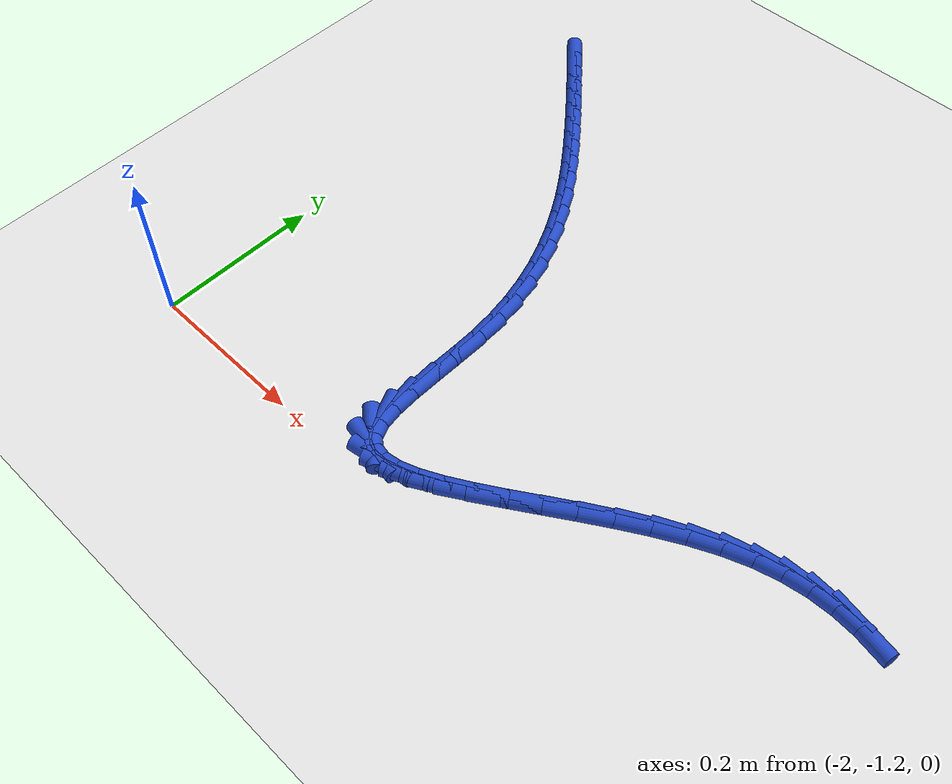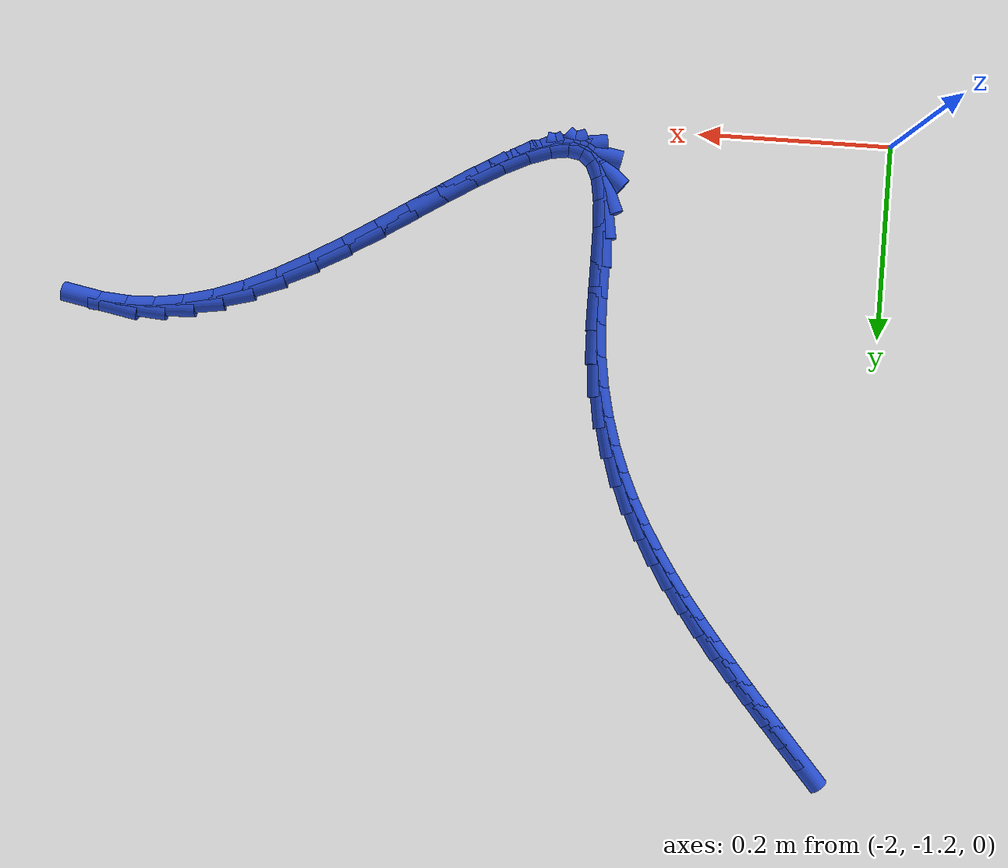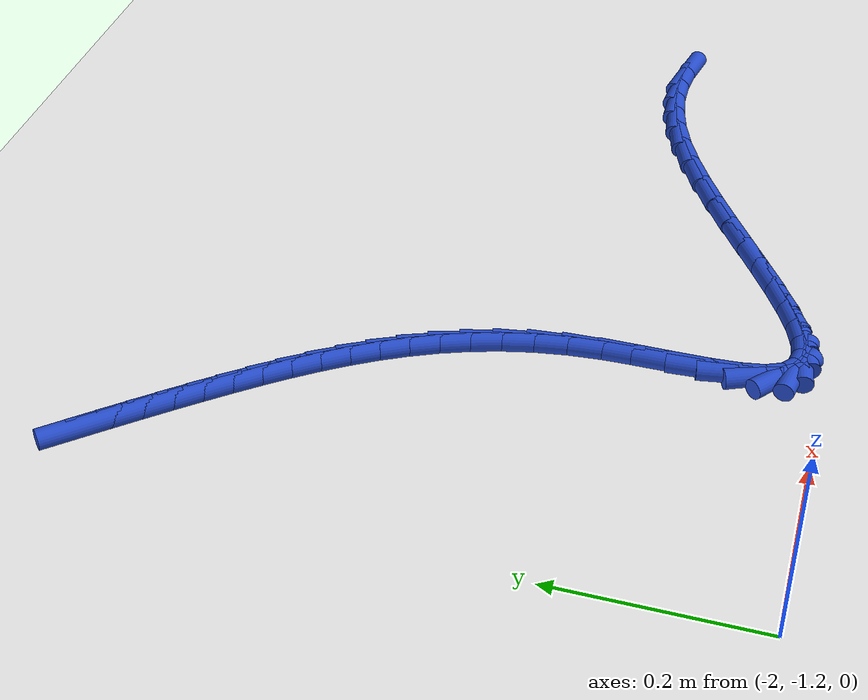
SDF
<sdf version="1.6">
 <world name="default">
  <model name="ground_plane">
   <static>1</static>
   <link name="link">
    <collision name="collision">
     <geometry><plane><normal>0 0 1</normal><size>100 100</size></plane></geometry>
     <surface><friction><ode><mu>100</mu><mu2>50</mu2></ode></friction></surface>
    </collision>
    <visual name="visual">
     <cast_shadows>0</cast_shadows>
     <geometry><plane><normal>0 0 1</normal><size>100 100</size></plane></geometry>
     <material>
      <script><uri>file://media/materials/scripts/gazebo.material</uri><name>Gazebo/WhiteGlow</name></script>
     </material>
    </visual>
   </link>
  </model>
  <model name="line">
   <link name="link_146">
    <pose>-1.9414628512714653 -0.5647062312395553 0.01 0 1.57 -0.8475536623716425</pose>
    <collision name="collision">
     <geometry><cylinder><radius>0.01</radius><length>0.08</length></cylinder></geometry>
    </collision>
    <visual name="visual">
     <material>
      <script><name>Gazebo/Blue</name><uri>file://media/materials/scripts/gazebo.material</uri></script>
     </material>
     <geometry><cylinder><radius>0.01</radius><length>0.08</length></cylinder></geometry>
    </visual>
   </link>
   <link name="link_147">
    <pose>-1.922609533267348 -0.5860619877239971 0.01 0 1.57 -0.853258498828122</pose>
    <collision name="collision">
     <geometry><cylinder><radius>0.01</radius><length>0.08</length></cylinder></geometry>
    </collision>
    <visual name="visual">
     <material>
      <script><name>Gazebo/Blue</name><uri>file://media/materials/scripts/gazebo.material</uri></script>
     </material>
     <geometry><cylinder><radius>0.01</radius><length>0.08</length></cylinder></geometry>
    </visual>
   </link>
   <link name="link_148">
    <pose>-1.9039316479799 -0.6074638830288714 0.01 0 1.57 -0.8606348979315335</pose>
    <collision name="collision">
     <geometry><cylinder><radius>0.01</radius><length>0.08</length></cylinder></geometry>
    </collision>
    <visual name="visual">
     <material>
      <script><name>Gazebo/Blue</name><uri>file://media/materials/scripts/gazebo.material</uri></script>
     </material>
     <geometry><cylinder><radius>0.01</radius><length>0.08</length></cylinder></geometry>
    </visual>
   </link>
   <link name="link_149">
    <pose>-1.885436559193729 -0.6289745677154739 0.01 0 1.57 -0.8696554462600776</pose>
    <collision name="collision">
     <geometry><cylinder><radius>0.01</radius><length>0.08</length></cylinder></geometry>
    </collision>
    <visual name="visual">
     <material>
      <script><name>Gazebo/Blue</name><uri>file://media/materials/scripts/gazebo.material</uri></script>
     </material>
     <geometry><cylinder><radius>0.01</radius><length>0.08</length></cylinder></geometry>
    </visual>
   </link>
   <link name="link_150">
    <pose>-1.8671316306934422 -0.650656692345099 0.01 0 1.57 -0.8804601049627584</pose>
    <collision name="collision">
     <geometry><cylinder><radius>0.01</radius><length>0.08</length></cylinder></geometry>
    </collision>
    <visual name="visual">
     <material>
      <script><name>Gazebo/Blue</name><uri>file://media/materials/scripts/gazebo.material</uri></script>
     </material>
     <geometry><cylinder><radius>0.01</radius><length>0.08</length></cylinder></geometry>
    </visual>
   </link>
   <link name="link_151">
    <pose>-1.8490296761561595 -0.6725745049234373 0.01 0 1.57 -0.8960218227219034</pose>
    <collision name="collision">
     <geometry><cylinder><radius>0.01</radius><length>0.08</length></cylinder></geometry>
    </collision>
    <visual name="visual">
     <material>
      <script><name>Gazebo/Blue</name><uri>file://media/materials/scripts/gazebo.material</uri></script>
     </material>
     <geometry><cylinder><radius>0.01</radius><length>0.08</length></cylinder></geometry>
    </visual>
   </link>
   <link name="link_152">
    <pose>-1.8312332171754893 -0.6948185481781594 0.01 0 1.57 -0.9187952316832634</pose>
    <collision name="collision">
     <geometry><cylinder><radius>0.01</radius><length>0.08</length></cylinder></geometry>
    </collision>
    <visual name="visual">
     <material>
      <script><name>Gazebo/Blue</name><uri>file://media/materials/scripts/gazebo.material</uri></script>
     </material>
     <geometry><cylinder><radius>0.01</radius><length>0.08</length></cylinder></geometry>
    </visual>
   </link>
   <link name="link_153">
    <pose>-1.813918260334158 -0.7175009043780839 0.01 0 1.57 -0.9488386832043584</pose>
    <collision name="collision">
     <geometry><cylinder><radius>0.01</radius><length>0.08</length></cylinder></geometry>
    </collision>
    <visual name="visual">
     <material>
      <script><name>Gazebo/Blue</name><uri>file://media/materials/scripts/gazebo.material</uri></script>
     </material>
     <geometry><cylinder><radius>0.01</radius><length>0.08</length></cylinder></geometry>
    </visual>
   </link>
   <link name="link_154">
    <pose>-1.7972629769962436 -0.7407342903215793 0.01 0 1.57 -0.9861031265258862</pose>
    <collision name="collision">
     <geometry><cylinder><radius>0.01</radius><length>0.08</length></cylinder></geometry>
    </collision>
    <visual name="visual">
     <material>
      <script><name>Gazebo/Blue</name><uri>file://media/materials/scripts/gazebo.material</uri></script>
     </material>
     <geometry><cylinder><radius>0.01</radius><length>0.08</length></cylinder></geometry>
    </visual>
   </link>
   <link name="link_155">
    <pose>-1.781445538525825 -0.7646314228070137 0.01 0 1.57 -1.03045834348146</pose>
    <collision name="collision">
     <geometry><cylinder><radius>0.01</radius><length>0.08</length></cylinder></geometry>
    </collision>
    <visual name="visual">
     <material>
      <script><name>Gazebo/Blue</name><uri>file://media/materials/scripts/gazebo.material</uri></script>
     </material>
     <geometry><cylinder><radius>0.01</radius><length>0.08</length></cylinder></geometry>
    </visual>
   </link>
   <link name="link_156">
    <pose>-1.7666441162869813 -0.789305018632755 0.01 0 1.57 -1.0816386925381407</pose>
    <collision name="collision">
     <geometry><cylinder><radius>0.01</radius><length>0.08</length></cylinder></geometry>
    </collision>
    <visual name="visual">
     <material>
      <script><name>Gazebo/Blue</name><uri>file://media/materials/scripts/gazebo.material</uri></script>
     </material>
     <geometry><cylinder><radius>0.01</radius><length>0.08</length></cylinder></geometry>
    </visual>
   </link>
   <link name="link_157">
    <pose>-1.7530368816437902 -0.814867794597172 0.01 0 1.57 -1.1391877236448864</pose>
    <collision name="collision">
     <geometry><cylinder><radius>0.01</radius><length>0.08</length></cylinder></geometry>
    </collision>
    <visual name="visual">
     <material>
      <script><name>Gazebo/Blue</name><uri>file://media/materials/scripts/gazebo.material</uri></script>
     </material>
     <geometry><cylinder><radius>0.01</radius><length>0.08</length></cylinder></geometry>
    </visual>
   </link>
   <link name="link_158">
    <pose>-1.7408020059603313 -0.8414324674986322 0.01 0 1.57 -1.2024124426956049</pose>
    <collision name="collision">
     <geometry><cylinder><radius>0.01</radius><length>0.08</length></cylinder></geometry>
    </collision>
    <visual name="visual">
     <material>
      <script><name>Gazebo/Blue</name><uri>file://media/materials/scripts/gazebo.material</uri></script>
     </material>
     <geometry><cylinder><radius>0.01</radius><length>0.08</length></cylinder></geometry>
    </visual>
   </link>
   <link name="link_159">
    <pose>-1.7301176606006832 -0.8691117541355043 0.01 0 1.57 -1.2703613373648273</pose>
    <collision name="collision">
     <geometry><cylinder><radius>0.01</radius><length>0.08</length></cylinder></geometry>
    </collision>
    <visual name="visual">
     <material>
      <script><name>Gazebo/Blue</name><uri>file://media/materials/scripts/gazebo.material</uri></script>
     </material>
     <geometry><cylinder><radius>0.01</radius><length>0.08</length></cylinder></geometry>
    </visual>
   </link>
   <link name="link_160">
    <pose>-1.7211620169289237 -0.8980183713061564 0.01 0 1.57 -1.3418398419709765</pose>
    <collision name="collision">
     <geometry><cylinder><radius>0.01</radius><length>0.08</length></cylinder></geometry>
    </collision>
    <visual name="visual">
     <material>
      <script><name>Gazebo/Blue</name><uri>file://media/materials/scripts/gazebo.material</uri></script>
     </material>
     <geometry><cylinder><radius>0.01</radius><length>0.08</length></cylinder></geometry>
    </visual>
   </link>
   <link name="link_161">
    <pose>-1.714113246309132 -0.9282650358089561 0.01 0 1.57 -1.4154703939292776</pose>
    <collision name="collision">
     <geometry><cylinder><radius>0.01</radius><length>0.08</length></cylinder></geometry>
    </collision>
    <visual name="visual">
     <material>
      <script><name>Gazebo/Blue</name><uri>file://media/materials/scripts/gazebo.material</uri></script>
     </material>
     <geometry><cylinder><radius>0.01</radius><length>0.08</length></cylinder></geometry>
    </visual>
   </link>
   <link name="link_162">
    <pose>-1.7091495201053866 -0.9599644644422723 0.01 0 1.57 -1.4895902476291596</pose>
    <collision name="collision">
     <geometry><cylinder><radius>0.01</radius><length>0.08</length></cylinder></geometry>
    </collision>
    <visual name="visual">
     <material>
      <script><name>Gazebo/Blue</name><uri>file://media/materials/scripts/gazebo.material</uri></script>
     </material>
     <geometry><cylinder><radius>0.01</radius><length>0.08</length></cylinder></geometry>
    </visual>
   </link>
   <link name="link_163">
    <pose>-1.7064428829745815 -0.9932216413356946 0.01 0 1.57 -1.5493224213586378</pose>
    <collision name="collision">
     <geometry><cylinder><radius>0.01</radius><length>0.08</length></cylinder></geometry>
    </collision>
    <visual name="visual">
     <material>
      <script><name>Gazebo/Blue</name><uri>file://media/materials/scripts/gazebo.material</uri></script>
     </material>
     <geometry><cylinder><radius>0.01</radius><length>0.08</length></cylinder></geometry>
    </visual>
   </link>
   <link name="link_164">
    <pose>-1.7057053702939484 -1.0275609615214503 0.01 0 1.57 1.5657417294366325</pose>
    <collision name="collision">
     <geometry><cylinder><radius>0.01</radius><length>0.08</length></cylinder></geometry>
    </collision>
    <visual name="visual">
     <material>
      <script><name>Gazebo/Blue</name><uri>file://media/materials/scripts/gazebo.material</uri></script>
     </material>
     <geometry><cylinder><radius>0.01</radius><length>0.08</length></cylinder></geometry>
    </visual>
   </link>
   <link name="link_165">
    <pose>-1.7058770844287479 -1.0615325442715575 0.01 0 1.57 -1.569150780080441</pose>
    <collision name="collision">
     <geometry><cylinder><radius>0.01</radius><length>0.08</length></cylinder></geometry>
    </collision>
    <visual name="visual">
     <material>
      <script><name>Gazebo/Blue</name><uri>file://media/materials/scripts/gazebo.material</uri></script>
     </material>
     <geometry><cylinder><radius>0.01</radius><length>0.08</length></cylinder></geometry>
    </visual>
   </link>
   <link name="link_166">
    <pose>-1.7058243268064246 -1.0935933628677987 0.01 0 1.57 -1.5215152349184937</pose>
    <collision name="collision">
     <geometry><cylinder><radius>0.01</radius><length>0.08</length></cylinder></geometry>
    </collision>
    <visual name="visual">
     <material>
      <script><name>Gazebo/Blue</name><uri>file://media/materials/scripts/gazebo.material</uri></script>
     </material>
     <geometry><cylinder><radius>0.01</radius><length>0.08</length></cylinder></geometry>
    </visual>
   </link>
   <link name="link_167">
    <pose>-1.7044133988544203 -1.1222003905919544 0.01 0 1.57 -1.4069764725641631</pose>
    <collision name="collision">
     <geometry><cylinder><radius>0.01</radius><length>0.08</length></cylinder></geometry>
    </collision>
    <visual name="visual">
     <material>
      <script><name>Gazebo/Blue</name><uri>file://media/materials/scripts/gazebo.material</uri></script>
     </material>
     <geometry><cylinder><radius>0.01</radius><length>0.08</length></cylinder></geometry>
    </visual>
   </link>
   <link name="link_168">
    <pose>-1.7005106020001794 -1.1458106007258069 0.01 0 1.57 -1.155629411928474</pose>
    <collision name="collision">
     <geometry><cylinder><radius>0.01</radius><length>0.08</length></cylinder></geometry>
    </collision>
    <visual name="visual">
     <material>
      <script><name>Gazebo/Blue</name><uri>file://media/materials/scripts/gazebo.material</uri></script>
     </material>
     <geometry><cylinder><radius>0.01</radius><length>0.08</length></cylinder></geometry>
    </visual>
   </link>
   <link name="link_169">
    <pose>-1.69298458861189 -1.162884596574962 0.01 0 1.57 -0.6860333209214196</pose>
    <collision name="collision">
     <geometry><cylinder><radius>0.01</radius><length>0.08</length></cylinder></geometry>
    </collision>
    <visual name="visual">
     <material>
      <script><name>Gazebo/Blue</name><uri>file://media/materials/scripts/gazebo.material</uri></script>
     </material>
     <geometry><cylinder><radius>0.01</radius><length>0.08</length></cylinder></geometry>
    </visual>
   </link>
   <link name="link_170">
    <pose>-1.681150772305248 -1.1725728133666387 0.01 0 1.57 -0.18425032544506603</pose>
    <collision name="collision">
     <geometry><cylinder><radius>0.01</radius><length>0.08</length></cylinder></geometry>
    </collision>
    <visual name="visual">
     <material>
      <script><name>Gazebo/Blue</name><uri>file://media/materials/scripts/gazebo.material</uri></script>
     </material>
     <geometry><cylinder><radius>0.01</radius><length>0.08</length></cylinder></geometry>
    </visual>
   </link>
   <link name="link_171">
    <pose>-1.6652971108977759 -1.1755273654449108 0.01 0 1.57 0.14943490173593227</pose>
    <collision name="collision">
     <geometry><cylinder><radius>0.01</radius><length>0.08</length></cylinder></geometry>
    </collision>
    <visual name="visual">
     <material>
      <script><name>Gazebo/Blue</name><uri>file://media/materials/scripts/gazebo.material</uri></script>
     </material>
     <geometry><cylinder><radius>0.01</radius><length>0.08</length></cylinder></geometry>
    </visual>
   </link>
   <link name="link_172">
    <pose>-1.6458394773303895 -1.1725978774255386 0.01 0 1.57 0.3381648854598751</pose>
    <collision name="collision">
     <geometry><cylinder><radius>0.01</radius><length>0.08</length></cylinder></geometry>
    </collision>
    <visual name="visual">
     <material>
      <script><name>Gazebo/Blue</name><uri>file://media/materials/scripts/gazebo.material</uri></script>
     </material>
     <geometry><cylinder><radius>0.01</radius><length>0.08</length></cylinder></geometry>
    </visual>
   </link>
   <link name="link_173">
    <pose>-1.6231937445440057 -1.1646339739242841 0.01 0 1.57 0.44585830971178575</pose>
    <collision name="collision">
     <geometry><cylinder><radius>0.01</radius><length>0.08</length></cylinder></geometry>
    </collision>
    <visual name="visual">
     <material>
      <script><name>Gazebo/Blue</name><uri>file://media/materials/scripts/gazebo.material</uri></script>
     </material>
     <geometry><cylinder><radius>0.01</radius><length>0.08</length></cylinder></geometry>
    </visual>
   </link>
   <link name="link_174">
    <pose>-1.5977757854795414 -1.152485279556908 0.01 0 1.57 0.5085743771530165</pose>
    <collision name="collision">
     <geometry><cylinder><radius>0.01</radius><length>0.08</length></cylinder></geometry>
    </collision>
    <visual name="visual">
     <material>
      <script><name>Gazebo/Blue</name><uri>file://media/materials/scripts/gazebo.material</uri></script>
     </material>
     <geometry><cylinder><radius>0.01</radius><length>0.08</length></cylinder></geometry>
    </visual>
   </link>
   <link name="link_175">
    <pose>-1.5700014730779133 -1.137001418939172 0.01 0 1.57 0.5438895838103298</pose>
    <collision name="collision">
     <geometry><cylinder><radius>0.01</radius><length>0.08</length></cylinder></geometry>
    </collision>
    <visual name="visual">
     <material>
      <script><name>Gazebo/Blue</name><uri>file://media/materials/scripts/gazebo.material</uri></script>
     </material>
     <geometry><cylinder><radius>0.01</radius><length>0.08</length></cylinder></geometry>
    </visual>
   </link>
   <link name="link_176">
    <pose>-1.5402866802800388 -1.1190320166868377 0.01 0 1.57 0.5604546605927335</pose>
    <collision name="collision">
     <geometry><cylinder><radius>0.01</radius><length>0.08</length></cylinder></geometry>
    </collision>
    <visual name="visual">
     <material>
      <script><name>Gazebo/Blue</name><uri>file://media/materials/scripts/gazebo.material</uri></script>
     </material>
     <geometry><cylinder><radius>0.01</radius><length>0.08</length></cylinder></geometry>
    </visual>
   </link>
   <link name="link_177">
    <pose>-1.5090472800268326 -1.0994266974156657 0.01 0 1.57 0.5624586060770639</pose>
    <collision name="collision">
     <geometry><cylinder><radius>0.01</radius><length>0.08</length></cylinder></geometry>
    </collision>
    <visual name="visual">
     <material>
      <script><name>Gazebo/Blue</name><uri>file://media/materials/scripts/gazebo.material</uri></script>
     </material>
     <geometry><cylinder><radius>0.01</radius><length>0.08</length></cylinder></geometry>
    </visual>
   </link>
   <link name="link_178">
    <pose>-1.4766991452592129 -1.0790350857414175 0.01 0 1.57 0.5515530880893195</pose>
    <collision name="collision">
     <geometry><cylinder><radius>0.01</radius><length>0.08</length></cylinder></geometry>
    </collision>
    <visual name="visual">
     <material>
      <script><name>Gazebo/Blue</name><uri>file://media/materials/scripts/gazebo.material</uri></script>
     </material>
     <geometry><cylinder><radius>0.01</radius><length>0.08</length></cylinder></geometry>
    </visual>
   </link>
   <link name="link_179">
    <pose>-1.4436581489180957 -1.0587068062798544 0.01 0 1.57 0.527622679197252</pose>
    <collision name="collision">
     <geometry><cylinder><radius>0.01</radius><length>0.08</length></cylinder></geometry>
    </collision>
    <visual name="visual">
     <material>
      <script><name>Gazebo/Blue</name><uri>file://media/materials/scripts/gazebo.material</uri></script>
     </material>
     <geometry><cylinder><radius>0.01</radius><length>0.08</length></cylinder></geometry>
    </visual>
   </link>
   <link name="link_180">
    <pose>-1.4103401639443978 -1.0392914836467373 0.01 0 1.57 0.48895297690752</pose>
    <collision name="collision">
     <geometry><cylinder><radius>0.01</radius><length>0.08</length></cylinder></geometry>
    </collision>
    <visual name="visual">
     <material>
      <script><name>Gazebo/Blue</name><uri>file://media/materials/scripts/gazebo.material</uri></script>
     </material>
     <geometry><cylinder><radius>0.01</radius><length>0.08</length></cylinder></geometry>
    </visual>
   </link>
   <link name="link_181">
    <pose>-1.3771610632790368 -1.0216387424578282 0.01 0 1.57 0.4319818016504481</pose>
    <collision name="collision">
     <geometry><cylinder><radius>0.01</radius><length>0.08</length></cylinder></geometry>
    </collision>
    <visual name="visual">
     <material>
      <script><name>Gazebo/Blue</name><uri>file://media/materials/scripts/gazebo.material</uri></script>
     </material>
     <geometry><cylinder><radius>0.01</radius><length>0.08</length></cylinder></geometry>
    </visual>
   </link>
   <link name="link_182">
    <pose>-1.344536719862928 -1.0065982073288877 0.01 0 1.57 0.35157350832978707</pose>
    <collision name="collision">
     <geometry><cylinder><radius>0.01</radius><length>0.08</length></cylinder></geometry>
    </collision>
    <visual name="visual">
     <material>
      <script><name>Gazebo/Blue</name><uri>file://media/materials/scripts/gazebo.material</uri></script>
     </material>
     <geometry><cylinder><radius>0.01</radius><length>0.08</length></cylinder></geometry>
    </visual>
   </link>
   <link name="link_183">
    <pose>-1.3128591256502915 -0.9949784636939595 0.01 0 1.57 0.2533843868578875</pose>
    <collision name="collision">
     <geometry><cylinder><radius>0.01</radius><length>0.08</length></cylinder></geometry>
    </collision>
    <visual name="visual">
     <material>
      <script><name>Gazebo/Blue</name><uri>file://media/materials/scripts/gazebo.material</uri></script>
     </material>
     <geometry><cylinder><radius>0.01</radius><length>0.08</length></cylinder></geometry>
    </visual>
   </link>
   <link name="link_184">
    <pose>-1.282201074010436 -0.9870395581475487 0.01 0 1.57 0.14626626061980946</pose>
    <collision name="collision">
     <geometry><cylinder><radius>0.01</radius><length>0.08</length></cylinder></geometry>
    </collision>
    <visual name="visual">
     <material>
      <script><name>Gazebo/Blue</name><uri>file://media/materials/scripts/gazebo.material</uri></script>
     </material>
     <geometry><cylinder><radius>0.01</radius><length>0.08</length></cylinder></geometry>
    </visual>
   </link>
   <link name="link_185">
    <pose>-1.252407788334798 -0.9826504610780691 0.01 0 1.57 0.0336343078864618</pose>
    <collision name="collision">
     <geometry><cylinder><radius>0.01</radius><length>0.08</length></cylinder></geometry>
    </collision>
    <visual name="visual">
     <material>
      <script><name>Gazebo/Blue</name><uri>file://media/materials/scripts/gazebo.material</uri></script>
     </material>
     <geometry><cylinder><radius>0.01</radius><length>0.08</length></cylinder></geometry>
    </visual>
   </link>
   <link name="link_186">
    <pose>-1.2233195969688282 -0.9816717307976544 0.01 0 1.57 -0.0801353982156345</pose>
    <collision name="collision">
     <geometry><cylinder><radius>0.01</radius><length>0.08</length></cylinder></geometry>
    </collision>
    <visual name="visual">
     <material>
      <script><name>Gazebo/Blue</name><uri>file://media/materials/scripts/gazebo.material</uri></script>
     </material>
     <geometry><cylinder><radius>0.01</radius><length>0.08</length></cylinder></geometry>
    </visual>
   </link>
   <link name="link_187">
    <pose>-1.1947768282579765 -0.9839639256184378 0.01 0 1.57 -0.19029195660928194</pose>
    <collision name="collision">
     <geometry><cylinder><radius>0.01</radius><length>0.08</length></cylinder></geometry>
    </collision>
    <visual name="visual">
     <material>
      <script><name>Gazebo/Blue</name><uri>file://media/materials/scripts/gazebo.material</uri></script>
     </material>
     <geometry><cylinder><radius>0.01</radius><length>0.08</length></cylinder></geometry>
    </visual>
   </link>
  </model>
 </world>
</sdf>
